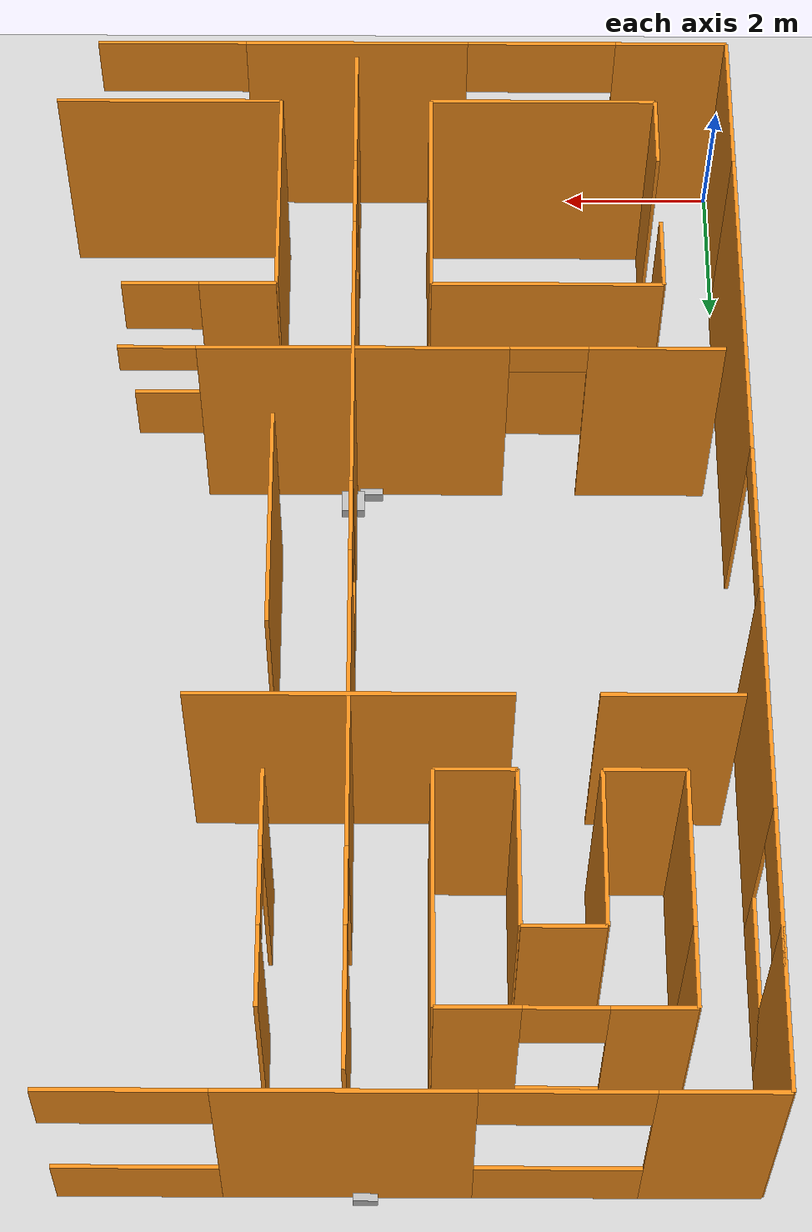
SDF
<sdf version="1.6">
 <world name="default">
  <include><uri>model://rirpc_box</uri><name>cube_3</name><pose>4.78125 14.96875 0 0 0 0</pose></include>
  <include><uri>model://rirpc_box</uri><name>cube_1</name><pose>5.03125 5.21875 0 0 0 0</pose></include>
  <include><uri>model://rirpc_box</uri><name>cube_0</name><pose>4.78125 4.96875 0 0 0 0</pose></include>
  <model name="window_17">
   <pose>7.5 4.0 1.75 0 0 -3.141592653589793</pose>
   <link name="top">
    <pose>0 0 1.25 0 0 0</pose>
    <inertial>
     <mass>1</mass>
     <inertia><ixx>0</ixx><ixy>0</ixy><ixz>0</ixz><iyy>0</iyy><iyz>0</iyz><izz>0</izz></inertia>
    </inertial>
    <collision name="collision"><geometry><box><size>1.0 0.05 1.0</size></box></geometry></collision>
    <visual name="visual">
     <geometry><box><size>1.0 0.05 1.0</size></box></geometry>
     <material>
      <script><name>Gazebo/Orange</name><uri>file://media/materials/scripts/gazebo.material</uri></script>
     </material>
    </visual>
   </link>
   <link name="bot">
    <pose>0 0 -1.25 0 0 0</pose>
    <inertial>
     <mass>1</mass>
     <inertia><ixx>0</ixx><ixy>0</ixy><ixz>0</ixz><iyy>0</iyy><iyz>0</iyz><izz>0</izz></inertia>
    </inertial>
    <collision name="collision"><geometry><box><size>1.0 0.05 1.0</size></box></geometry></collision>
    <visual name="visual">
     <geometry><box><size>1.0 0.05 1.0</size></box></geometry>
     <material>
      <script><name>Gazebo/Orange</name><uri>file://media/materials/scripts/gazebo.material</uri></script>
     </material>
    </visual>
   </link>
   <static>1</static>
  </model>
  <model name="window_15">
   <pose>2.5 14.0 1.75 0 0 -3.141592653589793</pose>
   <link name="top">
    <pose>0 0 1.25 0 0 0</pose>
    <inertial>
     <mass>1</mass>
     <inertia><ixx>0</ixx><ixy>0</ixy><ixz>0</ixz><iyy>0</iyy><iyz>0</iyz><izz>0</izz></inertia>
    </inertial>
    <collision name="collision"><geometry><box><size>1.0 0.05 1.0</size></box></geometry></collision>
    <visual name="visual">
     <geometry><box><size>1.0 0.05 1.0</size></box></geometry>
     <material>
      <script><name>Gazebo/Orange</name><uri>file://media/materials/scripts/gazebo.material</uri></script>
     </material>
    </visual>
   </link>
   <link name="bot">
    <pose>0 0 -1.25 0 0 0</pose>
    <inertial>
     <mass>1</mass>
     <inertia><ixx>0</ixx><ixy>0</ixy><ixz>0</ixz><iyy>0</iyy><iyz>0</iyz><izz>0</izz></inertia>
    </inertial>
    <collision name="collision"><geometry><box><size>1.0 0.05 1.0</size></box></geometry></collision>
    <visual name="visual">
     <geometry><box><size>1.0 0.05 1.0</size></box></geometry>
     <material>
      <script><name>Gazebo/Orange</name><uri>file://media/materials/scripts/gazebo.material</uri></script>
     </material>
    </visual>
   </link>
   <static>1</static>
  </model>
  <model name="window_13">
   <pose>5.0 7.5 1.75 0 0 1.5707963267948966</pose>
   <link name="top">
    <pose>0 0 1.25 0 0 0</pose>
    <inertial>
     <mass>1</mass>
     <inertia><ixx>0</ixx><ixy>0</ixy><ixz>0</ixz><iyy>0</iyy><iyz>0</iyz><izz>0</izz></inertia>
    </inertial>
    <collision name="collision"><geometry><box><size>1.0 0.05 1.0</size></box></geometry></collision>
    <visual name="visual">
     <geometry><box><size>1.0 0.05 1.0</size></box></geometry>
     <material>
      <script><name>Gazebo/Orange</name><uri>file://media/materials/scripts/gazebo.material</uri></script>
     </material>
    </visual>
   </link>
   <link name="bot">
    <pose>0 0 -1.25 0 0 0</pose>
    <inertial>
     <mass>1</mass>
     <inertia><ixx>0</ixx><ixy>0</ixy><ixz>0</ixz><iyy>0</iyy><iyz>0</iyz><izz>0</izz></inertia>
    </inertial>
    <collision name="collision"><geometry><box><size>1.0 0.05 1.0</size></box></geometry></collision>
    <visual name="visual">
     <geometry><box><size>1.0 0.05 1.0</size></box></geometry>
     <material>
      <script><name>Gazebo/Orange</name><uri>file://media/materials/scripts/gazebo.material</uri></script>
     </material>
    </visual>
   </link>
   <static>1</static>
  </model>
  <model name="window_11">
   <pose>5.0 2.5 1.75 0 0 1.5707963267948966</pose>
   <link name="top">
    <pose>0 0 1.25 0 0 0</pose>
    <inertial>
     <mass>1</mass>
     <inertia><ixx>0</ixx><ixy>0</ixy><ixz>0</ixz><iyy>0</iyy><iyz>0</iyz><izz>0</izz></inertia>
    </inertial>
    <collision name="collision"><geometry><box><size>1.0 0.05 1.0</size></box></geometry></collision>
    <visual name="visual">
     <geometry><box><size>1.0 0.05 1.0</size></box></geometry>
     <material>
      <script><name>Gazebo/Orange</name><uri>file://media/materials/scripts/gazebo.material</uri></script>
     </material>
    </visual>
   </link>
   <link name="bot">
    <pose>0 0 -1.25 0 0 0</pose>
    <inertial>
     <mass>1</mass>
     <inertia><ixx>0</ixx><ixy>0</ixy><ixz>0</ixz><iyy>0</iyy><iyz>0</iyz><izz>0</izz></inertia>
    </inertial>
    <collision name="collision"><geometry><box><size>1.0 0.05 1.0</size></box></geometry></collision>
    <visual name="visual">
     <geometry><box><size>1.0 0.05 1.0</size></box></geometry>
     <material>
      <script><name>Gazebo/Orange</name><uri>file://media/materials/scripts/gazebo.material</uri></script>
     </material>
    </visual>
   </link>
   <static>1</static>
  </model>
  <model name="window_10">
   <pose>2.5 0.0 1.75 0 0 -0.0</pose>
   <link name="top">
    <pose>0 0 1.25 0 0 0</pose>
    <inertial>
     <mass>1</mass>
     <inertia><ixx>0</ixx><ixy>0</ixy><ixz>0</ixz><iyy>0</iyy><iyz>0</iyz><izz>0</izz></inertia>
    </inertial>
    <collision name="collision"><geometry><box><size>2.0 0.05 1.0</size></box></geometry></collision>
    <visual name="visual">
     <geometry><box><size>2.0 0.05 1.0</size></box></geometry>
     <material>
      <script><name>Gazebo/Orange</name><uri>file://media/materials/scripts/gazebo.material</uri></script>
     </material>
    </visual>
   </link>
   <link name="bot">
    <pose>0 0 -1.25 0 0 0</pose>
    <inertial>
     <mass>1</mass>
     <inertia><ixx>0</ixx><ixy>0</ixy><ixz>0</ixz><iyy>0</iyy><iyz>0</iyz><izz>0</izz></inertia>
    </inertial>
    <collision name="collision"><geometry><box><size>2.0 0.05 1.0</size></box></geometry></collision>
    <visual name="visual">
     <geometry><box><size>2.0 0.05 1.0</size></box></geometry>
     <material>
      <script><name>Gazebo/Orange</name><uri>file://media/materials/scripts/gazebo.material</uri></script>
     </material>
    </visual>
   </link>
   <static>1</static>
  </model>
  <model name="window_9">
   <pose>7.5 0.0 1.75 0 0 -0.0</pose>
   <link name="top">
    <pose>0 0 1.25 0 0 0</pose>
    <inertial>
     <mass>1</mass>
     <inertia><ixx>0</ixx><ixy>0</ixy><ixz>0</ixz><iyy>0</iyy><iyz>0</iyz><izz>0</izz></inertia>
    </inertial>
    <collision name="collision"><geometry><box><size>2.0 0.05 1.0</size></box></geometry></collision>
    <visual name="visual">
     <geometry><box><size>2.0 0.05 1.0</size></box></geometry>
     <material>
      <script><name>Gazebo/Orange</name><uri>file://media/materials/scripts/gazebo.material</uri></script>
     </material>
    </visual>
   </link>
   <link name="bot">
    <pose>0 0 -1.25 0 0 0</pose>
    <inertial>
     <mass>1</mass>
     <inertia><ixx>0</ixx><ixy>0</ixy><ixz>0</ixz><iyy>0</iyy><iyz>0</iyz><izz>0</izz></inertia>
    </inertial>
    <collision name="collision"><geometry><box><size>2.0 0.05 1.0</size></box></geometry></collision>
    <visual name="visual">
     <geometry><box><size>2.0 0.05 1.0</size></box></geometry>
     <material>
      <script><name>Gazebo/Orange</name><uri>file://media/materials/scripts/gazebo.material</uri></script>
     </material>
    </visual>
   </link>
   <static>1</static>
  </model>
  <model name="window_3">
   <pose>7.5 15.0 1.75 0 0 -3.141592653589793</pose>
   <link name="top">
    <pose>0 0 1.25 0 0 0</pose>
    <inertial>
     <mass>1</mass>
     <inertia><ixx>0</ixx><ixy>0</ixy><ixz>0</ixz><iyy>0</iyy><iyz>0</iyz><izz>0</izz></inertia>
    </inertial>
    <collision name="collision"><geometry><box><size>2.0 0.05 1.0</size></box></geometry></collision>
    <visual name="visual">
     <geometry><box><size>2.0 0.05 1.0</size></box></geometry>
     <material>
      <script><name>Gazebo/Orange</name><uri>file://media/materials/scripts/gazebo.material</uri></script>
     </material>
    </visual>
   </link>
   <link name="bot">
    <pose>0 0 -1.25 0 0 0</pose>
    <inertial>
     <mass>1</mass>
     <inertia><ixx>0</ixx><ixy>0</ixy><ixz>0</ixz><iyy>0</iyy><iyz>0</iyz><izz>0</izz></inertia>
    </inertial>
    <collision name="collision"><geometry><box><size>2.0 0.05 1.0</size></box></geometry></collision>
    <visual name="visual">
     <geometry><box><size>2.0 0.05 1.0</size></box></geometry>
     <material>
      <script><name>Gazebo/Orange</name><uri>file://media/materials/scripts/gazebo.material</uri></script>
     </material>
    </visual>
   </link>
   <static>1</static>
  </model>
  <model name="window_2">
   <pose>2.5 15.0 1.75 0 0 -3.141592653589793</pose>
   <link name="top">
    <pose>0 0 1.25 0 0 0</pose>
    <inertial>
     <mass>1</mass>
     <inertia><ixx>0</ixx><ixy>0</ixy><ixz>0</ixz><iyy>0</iyy><iyz>0</iyz><izz>0</izz></inertia>
    </inertial>
    <collision name="collision"><geometry><box><size>2.0 0.05 1.0</size></box></geometry></collision>
    <visual name="visual">
     <geometry><box><size>2.0 0.05 1.0</size></box></geometry>
     <material>
      <script><name>Gazebo/Orange</name><uri>file://media/materials/scripts/gazebo.material</uri></script>
     </material>
    </visual>
   </link>
   <link name="bot">
    <pose>0 0 -1.25 0 0 0</pose>
    <inertial>
     <mass>1</mass>
     <inertia><ixx>0</ixx><ixy>0</ixy><ixz>0</ixz><iyy>0</iyy><iyz>0</iyz><izz>0</izz></inertia>
    </inertial>
    <collision name="collision"><geometry><box><size>2.0 0.05 1.0</size></box></geometry></collision>
    <visual name="visual">
     <geometry><box><size>2.0 0.05 1.0</size></box></geometry>
     <material>
      <script><name>Gazebo/Orange</name><uri>file://media/materials/scripts/gazebo.material</uri></script>
     </material>
    </visual>
   </link>
   <static>1</static>
  </model>
  <model name="window_1">
   <pose>0.0 12.5 1.75 0 0 1.5707963267948966</pose>
   <link name="top">
    <pose>0 0 1.25 0 0 0</pose>
    <inertial>
     <mass>1</mass>
     <inertia><ixx>0</ixx><ixy>0</ixy><ixz>0</ixz><iyy>0</iyy><iyz>0</iyz><izz>0</izz></inertia>
    </inertial>
    <collision name="collision"><geometry><box><size>2.0 0.05 1.0</size></box></geometry></collision>
    <visual name="visual">
     <geometry><box><size>2.0 0.05 1.0</size></box></geometry>
     <material>
      <script><name>Gazebo/Orange</name><uri>file://media/materials/scripts/gazebo.material</uri></script>
     </material>
    </visual>
   </link>
   <link name="bot">
    <pose>0 0 -1.25 0 0 0</pose>
    <inertial>
     <mass>1</mass>
     <inertia><ixx>0</ixx><ixy>0</ixy><ixz>0</ixz><iyy>0</iyy><iyz>0</iyz><izz>0</izz></inertia>
    </inertial>
    <collision name="collision"><geometry><box><size>2.0 0.05 1.0</size></box></geometry></collision>
    <visual name="visual">
     <geometry><box><size>2.0 0.05 1.0</size></box></geometry>
     <material>
      <script><name>Gazebo/Orange</name><uri>file://media/materials/scripts/gazebo.material</uri></script>
     </material>
    </visual>
   </link>
   <static>1</static>
  </model>
  <model name="box_83">
   <pose>6.0 12.5 3.25 0 0 1.5707963267948966</pose>
   <link name="link">
    <inertial>
     <mass>1</mass>
     <inertia><ixx>0</ixx><ixy>0</ixy><ixz>0</ixz><iyy>0</iyy><iyz>0</iyz><izz>0</izz></inertia>
    </inertial>
    <collision name="collision"><geometry><box><size>1.0 0.05 0.5</size></box></geometry></collision>
    <visual name="visual">
     <geometry><box><size>1.0 0.05 0.5</size></box></geometry>
     <material>
      <script><name>Gazebo/Orange</name><uri>file://media/materials/scripts/gazebo.material</uri></script>
     </material>
    </visual>
   </link>
   <static>1</static>
  </model>
  <model name="box_82">
   <pose>7.5 5.0 3.25 0 0 -3.141592653589793</pose>
   <link name="link">
    <inertial>
     <mass>1</mass>
     <inertia><ixx>0</ixx><ixy>0</ixy><ixz>0</ixz><iyy>0</iyy><iyz>0</iyz><izz>0</izz></inertia>
    </inertial>
    <collision name="collision"><geometry><box><size>1.0 0.05 0.5</size></box></geometry></collision>
    <visual name="visual">
     <geometry><box><size>1.0 0.05 0.5</size></box></geometry>
     <material>
      <script><name>Gazebo/Orange</name><uri>file://media/materials/scripts/gazebo.material</uri></script>
     </material>
    </visual>
   </link>
   <static>1</static>
  </model>
  <model name="box_80">
   <pose>5.0 12.5 3.25 0 0 1.5707963267948966</pose>
   <link name="link">
    <inertial>
     <mass>1</mass>
     <inertia><ixx>0</ixx><ixy>0</ixy><ixz>0</ixz><iyy>0</iyy><iyz>0</iyz><izz>0</izz></inertia>
    </inertial>
    <collision name="collision"><geometry><box><size>1.0 0.05 0.5</size></box></geometry></collision>
    <visual name="visual">
     <geometry><box><size>1.0 0.05 0.5</size></box></geometry>
     <material>
      <script><name>Gazebo/Orange</name><uri>file://media/materials/scripts/gazebo.material</uri></script>
     </material>
    </visual>
   </link>
   <static>1</static>
  </model>
  <model name="box_79">
   <pose>2.5 5.0 3.25 0 0 -3.141592653589793</pose>
   <link name="link">
    <inertial>
     <mass>1</mass>
     <inertia><ixx>0</ixx><ixy>0</ixy><ixz>0</ixz><iyy>0</iyy><iyz>0</iyz><izz>0</izz></inertia>
    </inertial>
    <collision name="collision"><geometry><box><size>1.0 0.05 0.5</size></box></geometry></collision>
    <visual name="visual">
     <geometry><box><size>1.0 0.05 0.5</size></box></geometry>
     <material>
      <script><name>Gazebo/Orange</name><uri>file://media/materials/scripts/gazebo.material</uri></script>
     </material>
    </visual>
   </link>
   <static>1</static>
  </model>
  <model name="box_78">
   <pose>0.0 7.5 3.25 0 0 1.5707963267948966</pose>
   <link name="link">
    <inertial>
     <mass>1</mass>
     <inertia><ixx>0</ixx><ixy>0</ixy><ixz>0</ixz><iyy>0</iyy><iyz>0</iyz><izz>0</izz></inertia>
    </inertial>
    <collision name="collision"><geometry><box><size>2.0 0.05 0.5</size></box></geometry></collision>
    <visual name="visual">
     <geometry><box><size>2.0 0.05 0.5</size></box></geometry>
     <material>
      <script><name>Gazebo/Orange</name><uri>file://media/materials/scripts/gazebo.material</uri></script>
     </material>
    </visual>
   </link>
   <static>1</static>
  </model>
  <model name="box_77">
   <pose>3.5 14.0 1.75 0 0 -3.141592653589793</pose>
   <link name="link">
    <inertial>
     <mass>1</mass>
     <inertia><ixx>0</ixx><ixy>0</ixy><ixz>0</ixz><iyy>0</iyy><iyz>0</iyz><izz>0</izz></inertia>
    </inertial>
    <collision name="collision"><geometry><box><size>1.0 0.05 3.5</size></box></geometry></collision>
    <visual name="visual">
     <geometry><box><size>1.0 0.05 3.5</size></box></geometry>
     <material>
      <script><name>Gazebo/Orange</name><uri>file://media/materials/scripts/gazebo.material</uri></script>
     </material>
    </visual>
   </link>
   <static>1</static>
  </model>
  <model name="box_76">
   <pose>1.5 14.0 1.75 0 0 -3.141592653589793</pose>
   <link name="link">
    <inertial>
     <mass>1</mass>
     <inertia><ixx>0</ixx><ixy>0</ixy><ixz>0</ixz><iyy>0</iyy><iyz>0</iyz><izz>0</izz></inertia>
    </inertial>
    <collision name="collision"><geometry><box><size>1.0 0.05 3.5</size></box></geometry></collision>
    <visual name="visual">
     <geometry><box><size>1.0 0.05 3.5</size></box></geometry>
     <material>
      <script><name>Gazebo/Orange</name><uri>file://media/materials/scripts/gazebo.material</uri></script>
     </material>
    </visual>
   </link>
   <static>1</static>
  </model>
  <model name="box_75">
   <pose>1.0 1.5 1.75 0 0 -1.5707963267948966</pose>
   <link name="link">
    <inertial>
     <mass>1</mass>
     <inertia><ixx>0</ixx><ixy>0</ixy><ixz>0</ixz><iyy>0</iyy><iyz>0</iyz><izz>0</izz></inertia>
    </inertial>
    <collision name="collision"><geometry><box><size>1.0 0.05 3.5</size></box></geometry></collision>
    <visual name="visual">
     <geometry><box><size>1.0 0.05 3.5</size></box></geometry>
     <material>
      <script><name>Gazebo/Orange</name><uri>file://media/materials/scripts/gazebo.material</uri></script>
     </material>
    </visual>
   </link>
   <static>1</static>
  </model>
  <model name="box_74">
   <pose>2.5 1.0 1.75 0 0 -0.0</pose>
   <link name="link">
    <inertial>
     <mass>1</mass>
     <inertia><ixx>0</ixx><ixy>0</ixy><ixz>0</ixz><iyy>0</iyy><iyz>0</iyz><izz>0</izz></inertia>
    </inertial>
    <collision name="collision"><geometry><box><size>3.0 0.05 3.5</size></box></geometry></collision>
    <visual name="visual">
     <geometry><box><size>3.0 0.05 3.5</size></box></geometry>
     <material>
      <script><name>Gazebo/Orange</name><uri>file://media/materials/scripts/gazebo.material</uri></script>
     </material>
    </visual>
   </link>
   <static>1</static>
  </model>
  <model name="box_73">
   <pose>4.0 2.5 1.75 0 0 1.5707963267948966</pose>
   <link name="link">
    <inertial>
     <mass>1</mass>
     <inertia><ixx>0</ixx><ixy>0</ixy><ixz>0</ixz><iyy>0</iyy><iyz>0</iyz><izz>0</izz></inertia>
    </inertial>
    <collision name="collision"><geometry><box><size>3.0 0.05 3.5</size></box></geometry></collision>
    <visual name="visual">
     <geometry><box><size>3.0 0.05 3.5</size></box></geometry>
     <material>
      <script><name>Gazebo/Orange</name><uri>file://media/materials/scripts/gazebo.material</uri></script>
     </material>
    </visual>
   </link>
   <static>1</static>
  </model>
  <model name="box_72">
   <pose>2.5 4.0 1.75 0 0 -3.141592653589793</pose>
   <link name="link">
    <inertial>
     <mass>1</mass>
     <inertia><ixx>0</ixx><ixy>0</ixy><ixz>0</ixz><iyy>0</iyy><iyz>0</iyz><izz>0</izz></inertia>
    </inertial>
    <collision name="collision"><geometry><box><size>3.0 0.05 3.5</size></box></geometry></collision>
    <visual name="visual">
     <geometry><box><size>3.0 0.05 3.5</size></box></geometry>
     <material>
      <script><name>Gazebo/Orange</name><uri>file://media/materials/scripts/gazebo.material</uri></script>
     </material>
    </visual>
   </link>
   <static>1</static>
  </model>
  <model name="box_71">
   <pose>1.0 3.5 1.75 0 0 -1.5707963267948966</pose>
   <link name="link">
    <inertial>
     <mass>1</mass>
     <inertia><ixx>0</ixx><ixy>0</ixy><ixz>0</ixz><iyy>0</iyy><iyz>0</iyz><izz>0</izz></inertia>
    </inertial>
    <collision name="collision"><geometry><box><size>1.0 0.05 3.5</size></box></geometry></collision>
    <visual name="visual">
     <geometry><box><size>1.0 0.05 3.5</size></box></geometry>
     <material>
      <script><name>Gazebo/Orange</name><uri>file://media/materials/scripts/gazebo.material</uri></script>
     </material>
    </visual>
   </link>
   <static>1</static>
  </model>
  <model name="box_63">
   <pose>7.5 1.0 1.75 0 0 -3.141592653589793</pose>
   <link name="link">
    <inertial>
     <mass>1</mass>
     <inertia><ixx>0</ixx><ixy>0</ixy><ixz>0</ixz><iyy>0</iyy><iyz>0</iyz><izz>0</izz></inertia>
    </inertial>
    <collision name="collision"><geometry><box><size>3.0 0.05 3.5</size></box></geometry></collision>
    <visual name="visual">
     <geometry><box><size>3.0 0.05 3.5</size></box></geometry>
     <material>
      <script><name>Gazebo/Orange</name><uri>file://media/materials/scripts/gazebo.material</uri></script>
     </material>
    </visual>
   </link>
   <static>1</static>
  </model>
  <model name="box_62">
   <pose>6.0 2.5 1.75 0 0 1.5707963267948966</pose>
   <link name="link">
    <inertial>
     <mass>1</mass>
     <inertia><ixx>0</ixx><ixy>0</ixy><ixz>0</ixz><iyy>0</iyy><iyz>0</iyz><izz>0</izz></inertia>
    </inertial>
    <collision name="collision"><geometry><box><size>3.0 0.05 3.5</size></box></geometry></collision>
    <visual name="visual">
     <geometry><box><size>3.0 0.05 3.5</size></box></geometry>
     <material>
      <script><name>Gazebo/Orange</name><uri>file://media/materials/scripts/gazebo.material</uri></script>
     </material>
    </visual>
   </link>
   <static>1</static>
  </model>
  <model name="box_61">
   <pose>6.5 4.0 1.75 0 0 -0.0</pose>
   <link name="link">
    <inertial>
     <mass>1</mass>
     <inertia><ixx>0</ixx><ixy>0</ixy><ixz>0</ixz><iyy>0</iyy><iyz>0</iyz><izz>0</izz></inertia>
    </inertial>
    <collision name="collision"><geometry><box><size>1.0 0.05 3.5</size></box></geometry></collision>
    <visual name="visual">
     <geometry><box><size>1.0 0.05 3.5</size></box></geometry>
     <material>
      <script><name>Gazebo/Orange</name><uri>file://media/materials/scripts/gazebo.material</uri></script>
     </material>
    </visual>
   </link>
   <static>1</static>
  </model>
  <model name="box_55">
   <pose>6.0 11.5 1.75 0 0 -1.5707963267948966</pose>
   <link name="link">
    <inertial>
     <mass>1</mass>
     <inertia><ixx>0</ixx><ixy>0</ixy><ixz>0</ixz><iyy>0</iyy><iyz>0</iyz><izz>0</izz></inertia>
    </inertial>
    <collision name="collision"><geometry><box><size>1.0 0.05 3.5</size></box></geometry></collision>
    <visual name="visual">
     <geometry><box><size>1.0 0.05 3.5</size></box></geometry>
     <material>
      <script><name>Gazebo/Orange</name><uri>file://media/materials/scripts/gazebo.material</uri></script>
     </material>
    </visual>
   </link>
   <static>1</static>
  </model>
  <model name="box_51">
   <pose>6.0 13.5 1.75 0 0 -1.5707963267948966</pose>
   <link name="link">
    <inertial>
     <mass>1</mass>
     <inertia><ixx>0</ixx><ixy>0</ixy><ixz>0</ixz><iyy>0</iyy><iyz>0</iyz><izz>0</izz></inertia>
    </inertial>
    <collision name="collision"><geometry><box><size>1.0 0.05 3.5</size></box></geometry></collision>
    <visual name="visual">
     <geometry><box><size>1.0 0.05 3.5</size></box></geometry>
     <material>
      <script><name>Gazebo/Orange</name><uri>file://media/materials/scripts/gazebo.material</uri></script>
     </material>
    </visual>
   </link>
   <static>1</static>
  </model>
  <model name="box_41">
   <pose>6.0 7.5 1.75 0 0 1.5707963267948966</pose>
   <link name="link">
    <inertial>
     <mass>1</mass>
     <inertia><ixx>0</ixx><ixy>0</ixy><ixz>0</ixz><iyy>0</iyy><iyz>0</iyz><izz>0</izz></inertia>
    </inertial>
    <collision name="collision"><geometry><box><size>3.0 0.05 3.5</size></box></geometry></collision>
    <visual name="visual">
     <geometry><box><size>3.0 0.05 3.5</size></box></geometry>
     <material>
      <script><name>Gazebo/Orange</name><uri>file://media/materials/scripts/gazebo.material</uri></script>
     </material>
    </visual>
   </link>
   <static>1</static>
  </model>
  <model name="box_40">
   <pose>1.0 13.5 1.75 0 0 1.5707963267948966</pose>
   <link name="link">
    <inertial>
     <mass>1</mass>
     <inertia><ixx>0</ixx><ixy>0</ixy><ixz>0</ixz><iyy>0</iyy><iyz>0</iyz><izz>0</izz></inertia>
    </inertial>
    <collision name="collision"><geometry><box><size>1.0 0.05 3.5</size></box></geometry></collision>
    <visual name="visual">
     <geometry><box><size>1.0 0.05 3.5</size></box></geometry>
     <material>
      <script><name>Gazebo/Orange</name><uri>file://media/materials/scripts/gazebo.material</uri></script>
     </material>
    </visual>
   </link>
   <static>1</static>
  </model>
  <model name="box_39">
   <pose>4.0 12.5 1.75 0 0 -1.5707963267948966</pose>
   <link name="link">
    <inertial>
     <mass>1</mass>
     <inertia><ixx>0</ixx><ixy>0</ixy><ixz>0</ixz><iyy>0</iyy><iyz>0</iyz><izz>0</izz></inertia>
    </inertial>
    <collision name="collision"><geometry><box><size>3.0 0.05 3.5</size></box></geometry></collision>
    <visual name="visual">
     <geometry><box><size>3.0 0.05 3.5</size></box></geometry>
     <material>
      <script><name>Gazebo/Orange</name><uri>file://media/materials/scripts/gazebo.material</uri></script>
     </material>
    </visual>
   </link>
   <static>1</static>
  </model>
  <model name="box_38">
   <pose>3.5 11.0 1.75 0 0 -3.141592653589793</pose>
   <link name="link">
    <inertial>
     <mass>1</mass>
     <inertia><ixx>0</ixx><ixy>0</ixy><ixz>0</ixz><iyy>0</iyy><iyz>0</iyz><izz>0</izz></inertia>
    </inertial>
    <collision name="collision"><geometry><box><size>1.0 0.05 3.5</size></box></geometry></collision>
    <visual name="visual">
     <geometry><box><size>1.0 0.05 3.5</size></box></geometry>
     <material>
      <script><name>Gazebo/Orange</name><uri>file://media/materials/scripts/gazebo.material</uri></script>
     </material>
    </visual>
   </link>
   <static>1</static>
  </model>
  <model name="box_37">
   <pose>3.0 12.0 1.75 0 0 1.5707963267948966</pose>
   <link name="link">
    <inertial>
     <mass>1</mass>
     <inertia><ixx>0</ixx><ixy>0</ixy><ixz>0</ixz><iyy>0</iyy><iyz>0</iyz><izz>0</izz></inertia>
    </inertial>
    <collision name="collision"><geometry><box><size>2.0 0.05 3.5</size></box></geometry></collision>
    <visual name="visual">
     <geometry><box><size>2.0 0.05 3.5</size></box></geometry>
     <material>
      <script><name>Gazebo/Orange</name><uri>file://media/materials/scripts/gazebo.material</uri></script>
     </material>
    </visual>
   </link>
   <static>1</static>
  </model>
  <model name="box_36">
   <pose>2.5 13.0 1.75 0 0 -3.141592653589793</pose>
   <link name="link">
    <inertial>
     <mass>1</mass>
     <inertia><ixx>0</ixx><ixy>0</ixy><ixz>0</ixz><iyy>0</iyy><iyz>0</iyz><izz>0</izz></inertia>
    </inertial>
    <collision name="collision"><geometry><box><size>1.0 0.05 3.5</size></box></geometry></collision>
    <visual name="visual">
     <geometry><box><size>1.0 0.05 3.5</size></box></geometry>
     <material>
      <script><name>Gazebo/Orange</name><uri>file://media/materials/scripts/gazebo.material</uri></script>
     </material>
    </visual>
   </link>
   <static>1</static>
  </model>
  <model name="box_35">
   <pose>2.0 12.0 1.75 0 0 -1.5707963267948966</pose>
   <link name="link">
    <inertial>
     <mass>1</mass>
     <inertia><ixx>0</ixx><ixy>0</ixy><ixz>0</ixz><iyy>0</iyy><iyz>0</iyz><izz>0</izz></inertia>
    </inertial>
    <collision name="collision"><geometry><box><size>2.0 0.05 3.5</size></box></geometry></collision>
    <visual name="visual">
     <geometry><box><size>2.0 0.05 3.5</size></box></geometry>
     <material>
      <script><name>Gazebo/Orange</name><uri>file://media/materials/scripts/gazebo.material</uri></script>
     </material>
    </visual>
   </link>
   <static>1</static>
  </model>
  <model name="box_34">
   <pose>1.5 11.0 1.75 0 0 -3.141592653589793</pose>
   <link name="link">
    <inertial>
     <mass>1</mass>
     <inertia><ixx>0</ixx><ixy>0</ixy><ixz>0</ixz><iyy>0</iyy><iyz>0</iyz><izz>0</izz></inertia>
    </inertial>
    <collision name="collision"><geometry><box><size>1.0 0.05 3.5</size></box></geometry></collision>
    <visual name="visual">
     <geometry><box><size>1.0 0.05 3.5</size></box></geometry>
     <material>
      <script><name>Gazebo/Orange</name><uri>file://media/materials/scripts/gazebo.material</uri></script>
     </material>
    </visual>
   </link>
   <static>1</static>
  </model>
  <model name="box_33">
   <pose>1.0 12.0 1.75 0 0 1.5707963267948966</pose>
   <link name="link">
    <inertial>
     <mass>1</mass>
     <inertia><ixx>0</ixx><ixy>0</ixy><ixz>0</ixz><iyy>0</iyy><iyz>0</iyz><izz>0</izz></inertia>
    </inertial>
    <collision name="collision"><geometry><box><size>2.0 0.05 3.5</size></box></geometry></collision>
    <visual name="visual">
     <geometry><box><size>2.0 0.05 3.5</size></box></geometry>
     <material>
      <script><name>Gazebo/Orange</name><uri>file://media/materials/scripts/gazebo.material</uri></script>
     </material>
    </visual>
   </link>
   <static>1</static>
  </model>
  <model name="box_31">
   <pose>5.0 10.0 1.75 0 0 -3.141592653589793</pose>
   <link name="link">
    <inertial>
     <mass>1</mass>
     <inertia><ixx>0</ixx><ixy>0</ixy><ixz>0</ixz><iyy>0</iyy><iyz>0</iyz><izz>0</izz></inertia>
    </inertial>
    <collision name="collision"><geometry><box><size>4.0 0.05 3.5</size></box></geometry></collision>
    <visual name="visual">
     <geometry><box><size>4.0 0.05 3.5</size></box></geometry>
     <material>
      <script><name>Gazebo/Orange</name><uri>file://media/materials/scripts/gazebo.material</uri></script>
     </material>
    </visual>
   </link>
   <static>1</static>
  </model>
  <model name="box_29">
   <pose>1.125 10.0 1.75 0 0 -3.141592653589793</pose>
   <link name="link">
    <inertial>
     <mass>1</mass>
     <inertia><ixx>0</ixx><ixy>0</ixy><ixz>0</ixz><iyy>0</iyy><iyz>0</iyz><izz>0</izz></inertia>
    </inertial>
    <collision name="collision"><geometry><box><size>1.75 0.05 3.5</size></box></geometry></collision>
    <visual name="visual">
     <geometry><box><size>1.75 0.05 3.5</size></box></geometry>
     <material>
      <script><name>Gazebo/Orange</name><uri>file://media/materials/scripts/gazebo.material</uri></script>
     </material>
    </visual>
   </link>
   <static>1</static>
  </model>
  <model name="box_28">
   <pose>1.125 5.0 1.75 0 0 -0.0</pose>
   <link name="link">
    <inertial>
     <mass>1</mass>
     <inertia><ixx>0</ixx><ixy>0</ixy><ixz>0</ixz><iyy>0</iyy><iyz>0</iyz><izz>0</izz></inertia>
    </inertial>
    <collision name="collision"><geometry><box><size>1.75 0.05 3.5</size></box></geometry></collision>
    <visual name="visual">
     <geometry><box><size>1.75 0.05 3.5</size></box></geometry>
     <material>
      <script><name>Gazebo/Orange</name><uri>file://media/materials/scripts/gazebo.material</uri></script>
     </material>
    </visual>
   </link>
   <static>1</static>
  </model>
  <model name="box_27">
   <pose>5.0 13.875 1.75 0 0 -1.5707963267948966</pose>
   <link name="link">
    <inertial>
     <mass>1</mass>
     <inertia><ixx>0</ixx><ixy>0</ixy><ixz>0</ixz><iyy>0</iyy><iyz>0</iyz><izz>0</izz></inertia>
    </inertial>
    <collision name="collision"><geometry><box><size>1.75 0.05 3.5</size></box></geometry></collision>
    <visual name="visual">
     <geometry><box><size>1.75 0.05 3.5</size></box></geometry>
     <material>
      <script><name>Gazebo/Orange</name><uri>file://media/materials/scripts/gazebo.material</uri></script>
     </material>
    </visual>
   </link>
   <static>1</static>
  </model>
  <model name="box_23">
   <pose>5.0 1.125 1.75 0 0 1.5707963267948966</pose>
   <link name="link">
    <inertial>
     <mass>1</mass>
     <inertia><ixx>0</ixx><ixy>0</ixy><ixz>0</ixz><iyy>0</iyy><iyz>0</iyz><izz>0</izz></inertia>
    </inertial>
    <collision name="collision"><geometry><box><size>1.75 0.05 3.5</size></box></geometry></collision>
    <visual name="visual">
     <geometry><box><size>1.75 0.05 3.5</size></box></geometry>
     <material>
      <script><name>Gazebo/Orange</name><uri>file://media/materials/scripts/gazebo.material</uri></script>
     </material>
    </visual>
   </link>
   <static>1</static>
  </model>
  <model name="box_20">
   <pose>5.0 10.0 1.75 0 0 -1.5707963267948966</pose>
   <link name="link">
    <inertial>
     <mass>1</mass>
     <inertia><ixx>0</ixx><ixy>0</ixy><ixz>0</ixz><iyy>0</iyy><iyz>0</iyz><izz>0</izz></inertia>
    </inertial>
    <collision name="collision"><geometry><box><size>4.0 0.05 3.5</size></box></geometry></collision>
    <visual name="visual">
     <geometry><box><size>4.0 0.05 3.5</size></box></geometry>
     <material>
      <script><name>Gazebo/Orange</name><uri>file://media/materials/scripts/gazebo.material</uri></script>
     </material>
    </visual>
   </link>
   <static>1</static>
  </model>
  <model name="box_19">
   <pose>5.0 5.0 1.75 0 0 -1.5707963267948966</pose>
   <link name="link">
    <inertial>
     <mass>1</mass>
     <inertia><ixx>0</ixx><ixy>0</ixy><ixz>0</ixz><iyy>0</iyy><iyz>0</iyz><izz>0</izz></inertia>
    </inertial>
    <collision name="collision"><geometry><box><size>4.0 0.05 3.5</size></box></geometry></collision>
    <visual name="visual">
     <geometry><box><size>4.0 0.05 3.5</size></box></geometry>
     <material>
      <script><name>Gazebo/Orange</name><uri>file://media/materials/scripts/gazebo.material</uri></script>
     </material>
    </visual>
   </link>
   <static>1</static>
  </model>
  <model name="box_17">
   <pose>5.0 5.0 1.75 0 0 -3.141592653589793</pose>
   <link name="link">
    <inertial>
     <mass>1</mass>
     <inertia><ixx>0</ixx><ixy>0</ixy><ixz>0</ixz><iyy>0</iyy><iyz>0</iyz><izz>0</izz></inertia>
    </inertial>
    <collision name="collision"><geometry><box><size>4.0 0.05 3.5</size></box></geometry></collision>
    <visual name="visual">
     <geometry><box><size>4.0 0.05 3.5</size></box></geometry>
     <material>
      <script><name>Gazebo/Orange</name><uri>file://media/materials/scripts/gazebo.material</uri></script>
     </material>
    </visual>
   </link>
   <static>1</static>
  </model>
  <model name="box_16">
   <pose>0.0 4.25 1.75 0 0 -1.5707963267948966</pose>
   <link name="link">
    <inertial>
     <mass>1</mass>
     <inertia><ixx>0</ixx><ixy>0</ixy><ixz>0</ixz><iyy>0</iyy><iyz>0</iyz><izz>0</izz></inertia>
    </inertial>
    <collision name="collision"><geometry><box><size>4.5 0.05 3.5</size></box></geometry></collision>
    <visual name="visual">
     <geometry><box><size>4.5 0.05 3.5</size></box></geometry>
     <material>
      <script><name>Gazebo/Orange</name><uri>file://media/materials/scripts/gazebo.material</uri></script>
     </material>
    </visual>
   </link>
   <static>1</static>
  </model>
  <model name="box_15">
   <pose>0.75 0.0 1.75 0 0 -3.141592653589793</pose>
   <link name="link">
    <inertial>
     <mass>1</mass>
     <inertia><ixx>0</ixx><ixy>0</ixy><ixz>0</ixz><iyy>0</iyy><iyz>0</iyz><izz>0</izz></inertia>
    </inertial>
    <collision name="collision"><geometry><box><size>1.5 0.05 3.5</size></box></geometry></collision>
    <visual name="visual">
     <geometry><box><size>1.5 0.05 3.5</size></box></geometry>
     <material>
      <script><name>Gazebo/Orange</name><uri>file://media/materials/scripts/gazebo.material</uri></script>
     </material>
    </visual>
   </link>
   <static>1</static>
  </model>
  <model name="box_14">
   <pose>5.0 0.0 1.75 0 0 -0.0</pose>
   <link name="link">
    <inertial>
     <mass>1</mass>
     <inertia><ixx>0</ixx><ixy>0</ixy><ixz>0</ixz><iyy>0</iyy><iyz>0</iyz><izz>0</izz></inertia>
    </inertial>
    <collision name="collision"><geometry><box><size>3.0 0.05 3.5</size></box></geometry></collision>
    <visual name="visual">
     <geometry><box><size>3.0 0.05 3.5</size></box></geometry>
     <material>
      <script><name>Gazebo/Orange</name><uri>file://media/materials/scripts/gazebo.material</uri></script>
     </material>
    </visual>
   </link>
   <static>1</static>
  </model>
  <model name="box_5">
   <pose>5.0 15.0 1.75 0 0 -3.141592653589793</pose>
   <link name="link">
    <inertial>
     <mass>1</mass>
     <inertia><ixx>0</ixx><ixy>0</ixy><ixz>0</ixz><iyy>0</iyy><iyz>0</iyz><izz>0</izz></inertia>
    </inertial>
    <collision name="collision"><geometry><box><size>3.0 0.05 3.5</size></box></geometry></collision>
    <visual name="visual">
     <geometry><box><size>3.0 0.05 3.5</size></box></geometry>
     <material>
      <script><name>Gazebo/Orange</name><uri>file://media/materials/scripts/gazebo.material</uri></script>
     </material>
    </visual>
   </link>
   <static>1</static>
  </model>
  <model name="box_4">
   <pose>0.75 15.0 1.75 0 0 -3.141592653589793</pose>
   <link name="link">
    <inertial>
     <mass>1</mass>
     <inertia><ixx>0</ixx><ixy>0</ixy><ixz>0</ixz><iyy>0</iyy><iyz>0</iyz><izz>0</izz></inertia>
    </inertial>
    <collision name="collision"><geometry><box><size>1.5 0.05 3.5</size></box></geometry></collision>
    <visual name="visual">
     <geometry><box><size>1.5 0.05 3.5</size></box></geometry>
     <material>
      <script><name>Gazebo/Orange</name><uri>file://media/materials/scripts/gazebo.material</uri></script>
     </material>
    </visual>
   </link>
   <static>1</static>
  </model>
  <model name="box_3">
   <pose>0.0 10.0 1.75 0 0 -1.5707963267948966</pose>
   <link name="link">
    <inertial>
     <mass>1</mass>
     <inertia><ixx>0</ixx><ixy>0</ixy><ixz>0</ixz><iyy>0</iyy><iyz>0</iyz><izz>0</izz></inertia>
    </inertial>
    <collision name="collision"><geometry><box><size>3.0 0.05 3.5</size></box></geometry></collision>
    <visual name="visual">
     <geometry><box><size>3.0 0.05 3.5</size></box></geometry>
     <material>
      <script><name>Gazebo/Orange</name><uri>file://media/materials/scripts/gazebo.material</uri></script>
     </material>
    </visual>
   </link>
   <static>1</static>
  </model>
  <model name="box_2">
   <pose>0.0 1.0 1.75 0 0 -1.5707963267948966</pose>
   <link name="link">
    <inertial>
     <mass>1</mass>
     <inertia><ixx>0</ixx><ixy>0</ixy><ixz>0</ixz><iyy>0</iyy><iyz>0</iyz><izz>0</izz></inertia>
    </inertial>
    <collision name="collision"><geometry><box><size>2.0 0.05 3.5</size></box></geometry></collision>
    <visual name="visual">
     <geometry><box><size>2.0 0.05 3.5</size></box></geometry>
     <material>
      <script><name>Gazebo/Orange</name><uri>file://media/materials/scripts/gazebo.material</uri></script>
     </material>
    </visual>
   </link>
   <static>1</static>
  </model>
  <model name="box_1">
   <pose>0.0 14.0 1.75 0 0 -1.5707963267948966</pose>
   <link name="link">
    <inertial>
     <mass>1</mass>
     <inertia><ixx>0</ixx><ixy>0</ixy><ixz>0</ixz><iyy>0</iyy><iyz>0</iyz><izz>0</izz></inertia>
    </inertial>
    <collision name="collision"><geometry><box><size>2.0 0.05 3.5</size></box></geometry></collision>
    <visual name="visual">
     <geometry><box><size>2.0 0.05 3.5</size></box></geometry>
     <material>
      <script><name>Gazebo/Orange</name><uri>file://media/materials/scripts/gazebo.material</uri></script>
     </material>
    </visual>
   </link>
   <static>1</static>
  </model>
  <model name="ground_plane">
   <static>1</static>
   <link name="link">
    <collision name="collision">
     <geometry><plane><normal>0 0 1</normal><size>100 100</size></plane></geometry>
     <surface>
      <contact><collide_bitmask>65535</collide_bitmask></contact>
      <friction><ode><mu>100</mu><mu2>50</mu2></ode></friction>
     </surface>
    </collision>
    <visual name="visual">
     <cast_shadows>0</cast_shadows>
     <geometry><plane><normal>0 0 1</normal><size>100 100</size></plane></geometry>
     <material>
      <script><uri>file://media/materials/scripts/gazebo.material</uri><name>Gazebo/Grey</name></script>
     </material>
    </visual>
   </link>
  </model>
 </world>
</sdf>
